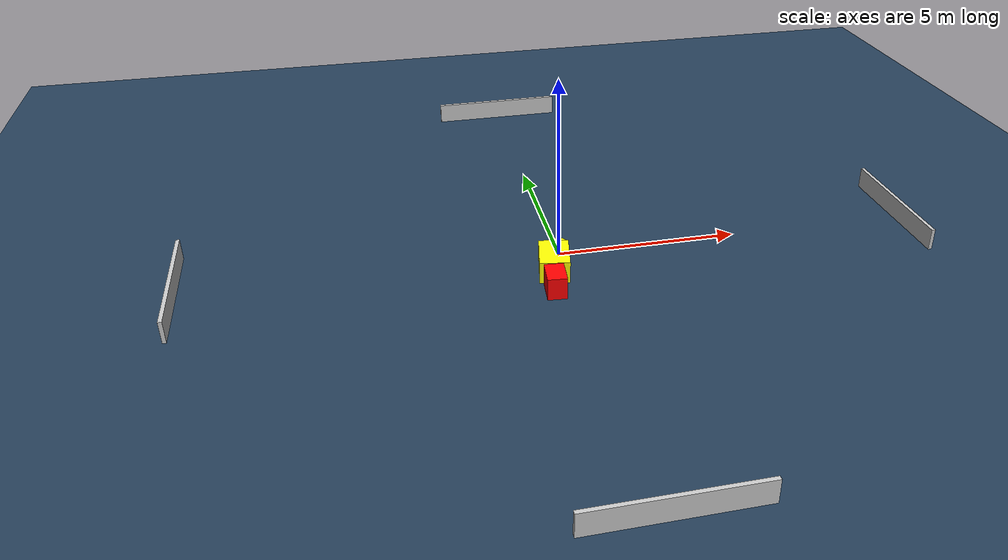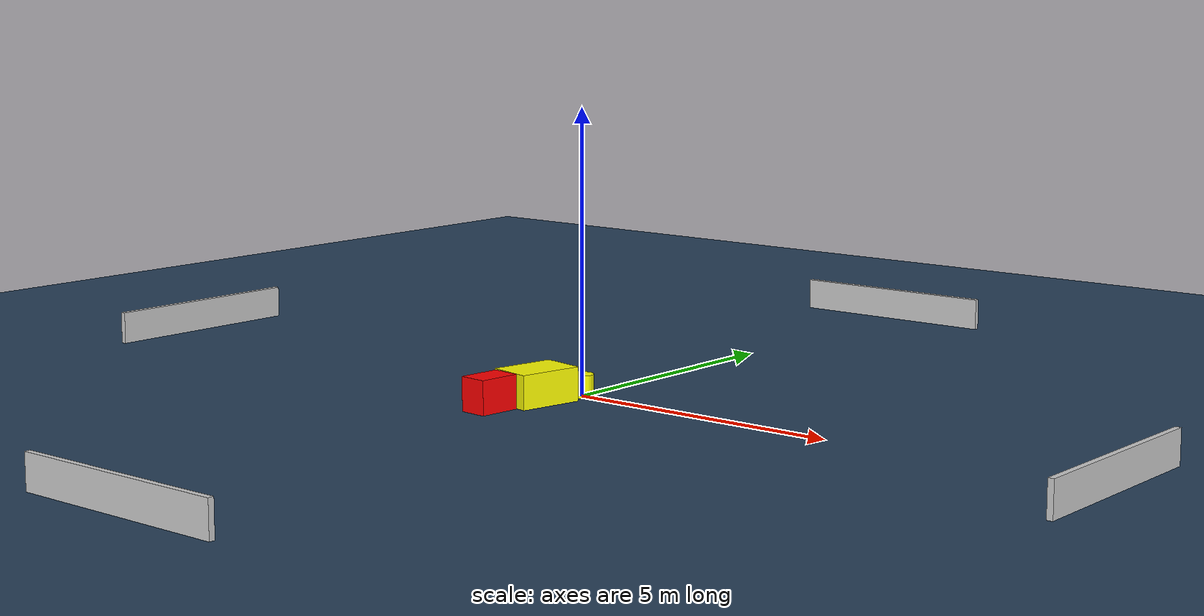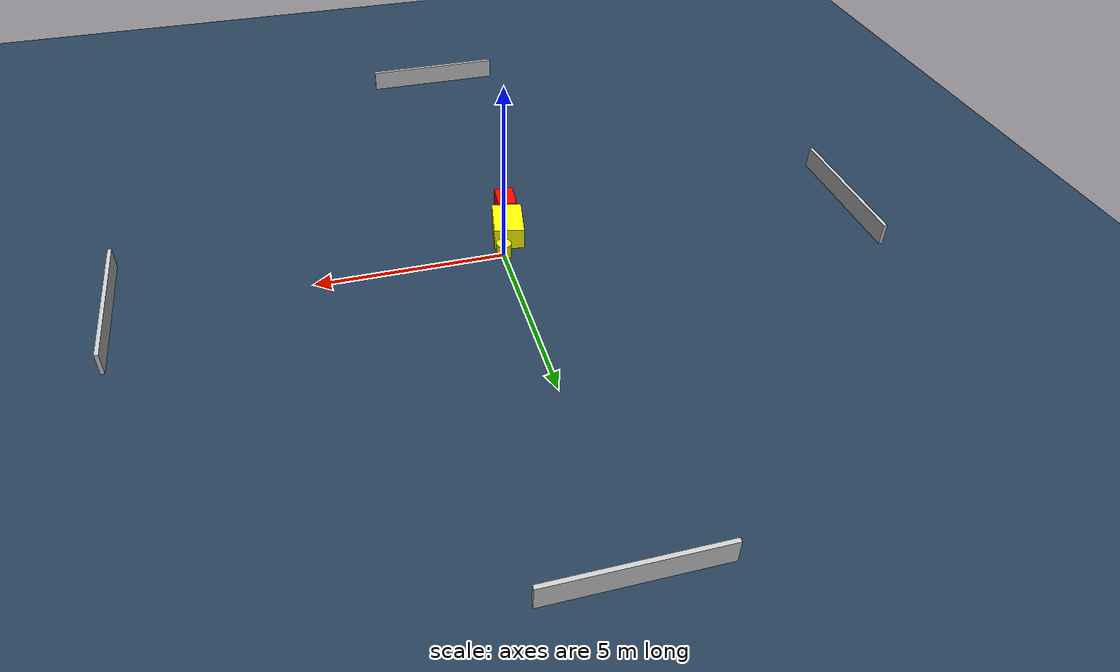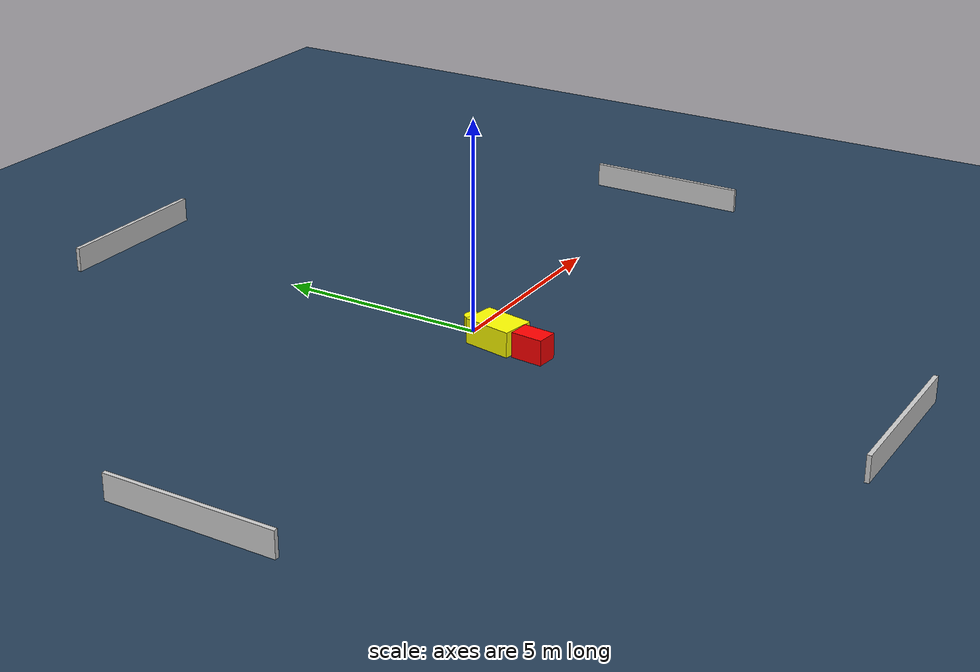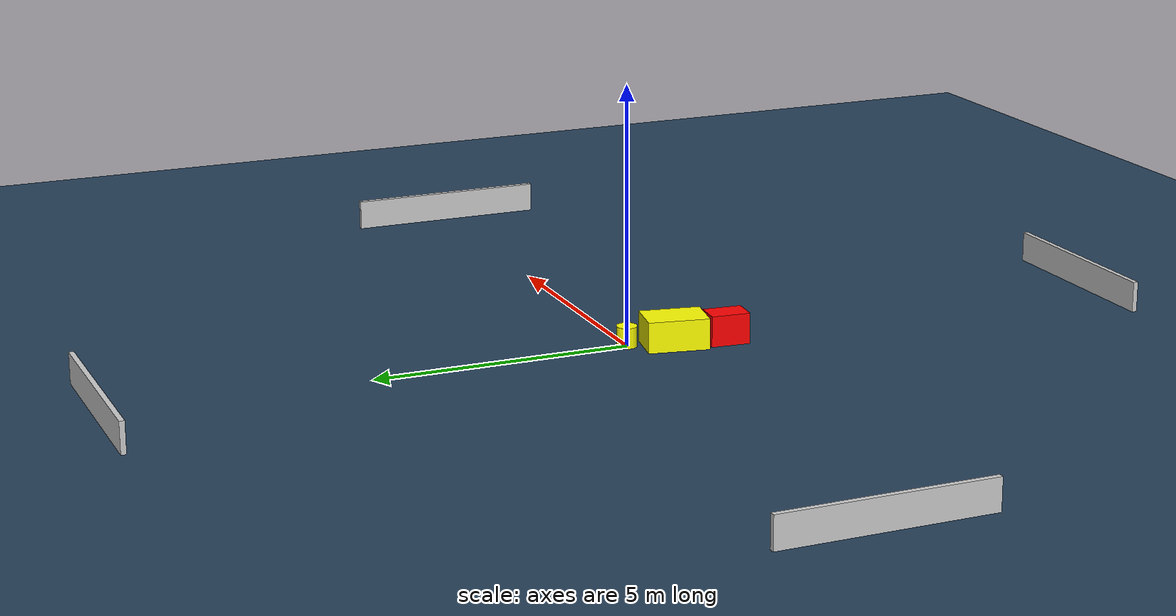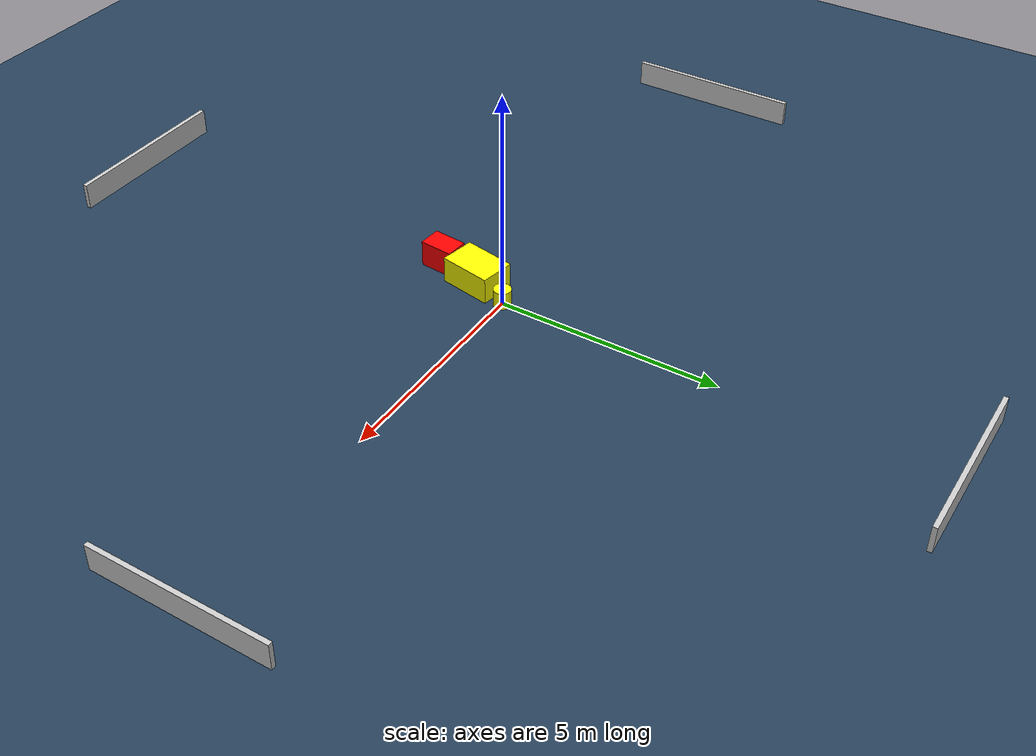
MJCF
<?xml version="1.0" ?>
<mujoco model="generated_environment">
  <option timestep="0.01" integrator="RK4" cone="elliptic"/>
  <default>
    <geom density="1"/>
  </default>
  <asset>
    <texture builtin="gradient" height="3072" name="skybox" rgb1="0.3 0.5 0.7" rgb2="0 0 0" type="skybox" width="512"/>
    <texture builtin="checker" height="300" name="groundplane" rgb1="0.2 0.3 0.4" rgb2="0.1 0.2 0.3" type="2d" width="300"/>
    <material name="groundplane" reflectance="0.2" texrepeat="5 5" texture="groundplane"/>
  </asset>
  <worldbody>
    <light dir="0 0 -1" directional="true" pos="0 0 1.5"/>
    <geom condim="3" friction="0.5 0.005 0.001" material="groundplane" name="floor" pos="0 0 0" size="0 0 0.05" type="plane"/>
    <body name="walls">
      <geom name="wall_1" condim="4" pos="-10.0 0.0 0.3" rgba="0.800000011920929 0.800000011920929 0.800000011920929 1.0" size="0.05 2.0 0.3" type="box"/>
      <geom name="wall_2" condim="4" pos="10.0 0.0 0.3" rgba="0.800000011920929 0.800000011920929 0.800000011920929 1.0" size="0.05 2.0 0.3" type="box"/>
      <geom name="wall_3" condim="4" pos="0.0 -10.0 0.3" rgba="0.800000011920929 0.800000011920929 0.800000011920929 1.0" size="2.0 0.05 0.3" type="box"/>
      <geom name="wall_4" condim="4" pos="0.0 10.0 0.3" rgba="0.800000011920929 0.800000011920929 0.800000011920929 1.0" size="2.0 0.05 0.3" type="box"/>
    </body>
    <body name="robot">
      <joint name="joint_x" type="slide" pos="0 0 0" axis="1 0 0"/>
      <joint name="joint_y" type="slide" pos="0 0 0" axis="0 1 0"/>
      <geom name="robot" type="cylinder" pos="0.0 0.0 0.2" size="0.2 0.2 0.0" mass="5.0" friction="1.0 0.005 0.0001" condim="4" rgba="1.0 1.0 0.0 1.0"/>
    </body>
    <body name="obstacle_1_movable">
      <geom name="obstacle_1_movable" condim="4" pos="-0.3188153937232497 -0.834485826776109 0.3" euler="0 0 349.6379445116394" friction="0.0 0.005 0.001" rgba="1.0 1.0 0.0 1.0" size="0.3992912694280899 0.5931613778657744 0.3" type="box" mass="0.1"/>
      <joint type="free"/>
    </body>
    <body name="obstacle_2_static">
      <geom name="obstacle_2_static" condim="4" pos="-0.5014717591727965 -1.8291107141086844 0.3" euler="0 0 175.0966121508931" friction="0.0 0.005 0.001" rgba="1.0 0.0 0.0 1.0" size="0.2581015700772288 0.3822238689855339 0.3" type="box"/>
    </body>
  </worldbody>
  <actuator>
    <motor name="actuator_x" joint="joint_x" gear="1" ctrlrange="-1 1"/>
    <motor name="actuator_y" joint="joint_y" gear="1" ctrlrange="-1 1"/>
  </actuator>
</mujoco>
